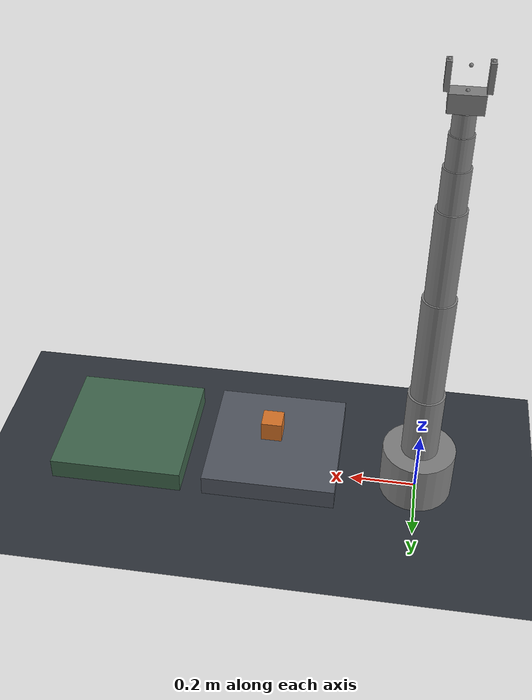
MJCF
<mujoco model="benchmark-world">
  <compiler angle="radian"/>

  <option tolerance="1e-10" integrator="implicitfast" jacobian="dense"/>

  <visual>
    <headlight ambient="0 0 0" diffuse="0 0 0" specular="0 0 0"/>
  </visual>

  <statistic extent="7.92" center="0 0 0"/>

  <default>
    <default class="robot/main"/>
  </default>

  <worldbody>
    <geom name="world/floor" size="7.92 7.92 0.1" type="plane" rgba="0.18 0.2 0.23 1"/>
    <camera name="world/camera" pos="4.752 -6.6 4.752" quat="0.803956 0.50933 0.164287 0.259321" fovy="50"/>
    <light name="world/key" pos="0 -2.64 7.92" dir="0 0 -1" type="directional" ambient="0.3 0.3 0.3" diffuse="0.8 0.8 0.8" specular="0.1 0.1 0.1"/>
    <body name="world/bench" pos="0.4356 0 0.10032">
      <geom name="world/bench_geom" size="0.198 0.198 0.03168" type="box" condim="4" priority="1" friction="1 0.03 0.001" solref="0.004" solimp="0.95 0.99" rgba="0.32 0.34 0.38 1"/>
    </body>
    <body name="world/cube" pos="0.450063 -0.0243105 0.16368">
      <joint name="world/cube_free" type="free"/>
      <geom name="world/cube_geom" size="0.03168 0.03168 0.03168" type="box" condim="4" priority="1" friction="1.57543 0.03 0.001" solref="0.004" solimp="0.95 0.99" mass="0.267146" rgba="0.85 0.45 0.15 1"/>
    </body>
    <body name="world/destination" pos="0.8976 0 0.10032">
      <geom name="world/destination_geom" size="0.198 0.198 0.03168" type="box" condim="4" priority="1" friction="1 0.03 0.001" solref="0.004" solimp="0.95 0.99" rgba="0.25 0.4 0.3 1"/>
    </body>
    <body name="robot/base">
      <inertial pos="0 0 0.08" quat="0.5 0.5 -0.5 0.5" mass="8" diaginertia="0.0484 0.0412667 0.0412667"/>
      <geom size="0.11 0.08" pos="0 0 0.08" type="cylinder"/>
      <site name="robot/robot_base" pos="0 0 0"/>
      <body name="robot/link_0" pos="0 0 0.16">
        <inertial pos="0 0 0.11" mass="1.88166" diaginertia="0.00901235 0.00901235 0.00284601"/>
        <joint name="robot/joint_0" pos="0 0 0" axis="0 0 1" range="-2.85 2.85" actuatorfrcrange="-160 160"/>
        <geom size="0.055 0.11" pos="0 0 0.11" type="cylinder"/>
        <body name="robot/link_1" pos="0 0 0.22">
          <inertial pos="0 0 0.17" mass="2.25197" diaginertia="0.0230128 0.0230128 0.00263768"/>
          <joint name="robot/joint_1" pos="0 0 0" axis="0 1 0" range="-2.85 2.85" actuatorfrcrange="-160 160"/>
          <geom size="0.0484 0.17" pos="0 0 0.17" type="cylinder"/>
          <body name="robot/link_2" pos="0 0 0.34">
            <inertial pos="0 0 0.14" mass="1.43617" diaginertia="0.0100343 0.0100343 0.00130266"/>
            <joint name="robot/joint_2" pos="0 0 0" axis="0 1 0" range="-2.85 2.85" actuatorfrcrange="-160 160"/>
            <geom size="0.042592 0.14" pos="0 0 0.14" type="cylinder"/>
            <body name="robot/link_3" pos="0 0 0.28">
              <inertial pos="0 0 0.06" mass="0.476645" diaginertia="0.00073937 0.00073937 0.0003348"/>
              <joint name="robot/joint_3" pos="0 0 0" axis="0 0 1" range="-2.85 2.85" actuatorfrcrange="-160 160"/>
              <geom size="0.037481 0.06" pos="0 0 0.06" type="cylinder"/>
              <body name="robot/link_4" pos="0 0 0.12">
                <inertial pos="0 0 0.045" mass="0.276835" diaginertia="0.00026216 0.00026216 0.00015058"/>
                <joint name="robot/joint_4" pos="0 0 0" axis="0 1 0" range="-2.85 2.85" actuatorfrcrange="-160 160"/>
                <geom size="0.032983 0.045" pos="0 0 0.045" type="cylinder"/>
                <body name="robot/link_5" pos="0 0 0.09">
                  <inertial pos="0 0 0.03" mass="0.25" diaginertia="0.00012765 0.00012765 0.00010531"/>
                  <joint name="robot/joint_5" pos="0 0 0" axis="0 0 1" range="-2.85 2.85" actuatorfrcrange="-160 160"/>
                  <geom size="0.029025 0.03" pos="0 0 0.03" type="cylinder"/>
                  <body name="robot/palm" pos="0 0 0.06">
                    <inertial pos="0 0 0.025" quat="0.5 0.5 0.5 0.5" mass="0.35" diaginertia="0.00030917 0.00030917 0.00014583"/>
                    <geom size="0.045 0.025 0.025" pos="0 0 0.025" type="box"/>
                    <site name="robot/palm_grasp_point" pos="0 0 0.11275"/>
                    <site name="robot/palm_grasp_center" pos="0 0 0.05"/>
                    <site name="robot/palm_wrist" pos="0 0 0"/>
                    <body name="robot/finger_left" pos="0.0505 0 0.05">
                      <inertial pos="0 0 0.0375" mass="0.06" diaginertia="3.263e-05 2.911e-05 5.48e-06"/>
                      <joint name="robot/grip_left" pos="0 0 0" axis="-1 0 0" type="slide" range="0 0.0425" actuatorfrcrange="-60 60"/>
                      <geom size="0.007 0.015 0.0375" pos="0 0 0.0375" type="box"/>
                      <site name="robot/palm_tip" pos="0 0 0.075"/>
                      <site name="robot/palm_contact_0" pos="0 0 0.075"/>
                    </body>
                    <body name="robot/finger_right" pos="-0.0505 0 0.05">
                      <inertial pos="0 0 0.0375" mass="0.06" diaginertia="3.263e-05 2.911e-05 5.48e-06"/>
                      <joint name="robot/grip_right" pos="0 0 0" axis="1 0 0" type="slide" range="0 0.0425" actuatorfrcrange="-60 60"/>
                      <geom size="0.007 0.015 0.0375" pos="0 0 0.0375" type="box"/>
                      <site name="robot/palm_contact_1" pos="0 0 0.075"/>
                    </body>
                  </body>
                </body>
              </body>
            </body>
          </body>
        </body>
      </body>
    </body>
  </worldbody>

  <actuator>
    <general name="robot/joint_0_motor" joint="robot/joint_0" ctrllimited="true" ctrlrange="-160 160" forcelimited="true" forcerange="-160 160"/>
    <general name="robot/joint_1_motor" joint="robot/joint_1" ctrllimited="true" ctrlrange="-160 160" forcelimited="true" forcerange="-160 160"/>
    <general name="robot/joint_2_motor" joint="robot/joint_2" ctrllimited="true" ctrlrange="-160 160" forcelimited="true" forcerange="-160 160"/>
    <general name="robot/joint_3_motor" joint="robot/joint_3" ctrllimited="true" ctrlrange="-160 160" forcelimited="true" forcerange="-160 160"/>
    <general name="robot/joint_4_motor" joint="robot/joint_4" ctrllimited="true" ctrlrange="-160 160" forcelimited="true" forcerange="-160 160"/>
    <general name="robot/joint_5_motor" joint="robot/joint_5" ctrllimited="true" ctrlrange="-160 160" forcelimited="true" forcerange="-160 160"/>
    <general name="robot/grip_left_motor" joint="robot/grip_left" ctrllimited="true" ctrlrange="-60 60" forcelimited="true" forcerange="-60 60"/>
    <general name="robot/grip_right_motor" joint="robot/grip_right" ctrllimited="true" ctrlrange="-60 60" forcelimited="true" forcerange="-60 60"/>
  </actuator>
</mujoco>
